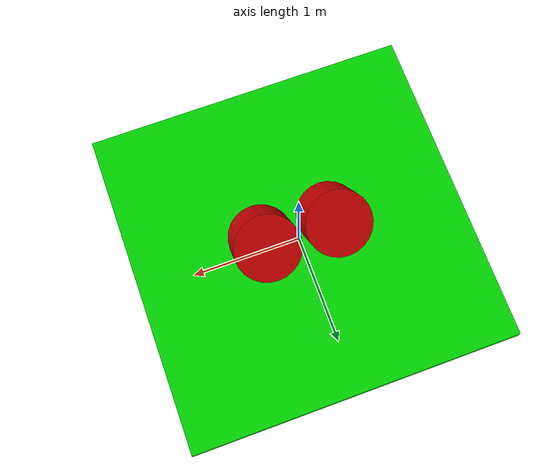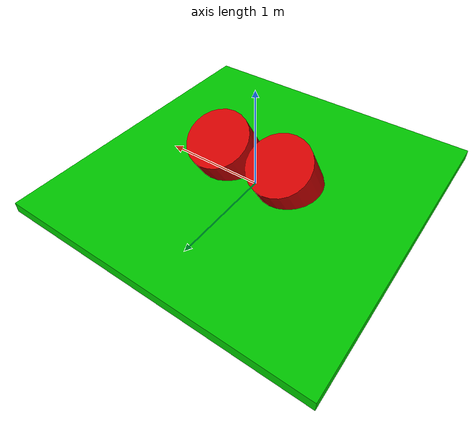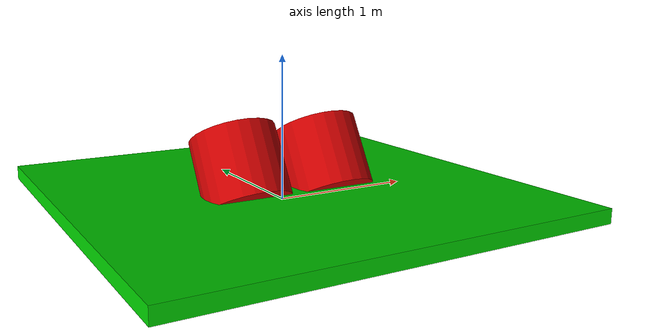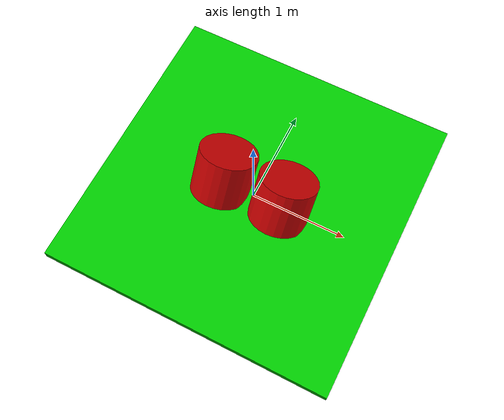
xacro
<?xml version="1.0"?>
<robot xmlns:xacro="http://www.ros.org/wiki/xacro" name="my_custom_robot">
    <xacro:property name="PI" value="3.1416"/>

    <!-- Define material named "black" with RGBA color values -->
    <material name="black">
        <color rgba="0.0 0.0 0.0 1.0" />
    </material>

    <!-- Define material named "blue" with RGBA color values -->
    <material name="blue">
        <color rgba="0.0 0.0 0.8 1.0" />
    </material>

    <!-- Define material named "green" with RGBA color values -->
    <material name="green">
        <color rgba="0.0 0.8 0.0 1.0" />
    </material>

    <!-- Define material named "red" with RGBA color values -->
    <material name="red">
        <color rgba="0.8 0.0 0.0 1.0" />
    </material>

    <!-- Define link named "world" -->
    <link name="world" />

    <!-- Define link named "base" -->
    <link name="base">
        <collision>
            <origin xyz="0 0 0.05" rpy="0 0 0" />
            <geometry>
                <box size="3.0 3.0 0.1" />
            </geometry>
        </collision>
        <visual>
            <origin xyz="0 0 0.05" rpy="0 0 0" />
            <geometry>
                <box size="3.0 3.0 0.1" />
            </geometry>
            <material name="green" />
        </visual>

    </link>

    <!-- Define link named "roller_1" -->
    <link name="roller_1">
        <collision>
            <origin xyz="0 0 0" rpy="0 0 0" />
            <geometry>
                <cylinder radius="0.3" length="0.5" />
            </geometry>
        </collision>
        <visual>
            <origin xyz="0 0 0" rpy="0 0 0" />
            <geometry>
                <cylinder radius="0.3" length="0.5" />
            </geometry>
            <material name="red" />
        </visual>

    </link>

    <!-- Define link named "roller_2" -->
    <link name="roller_2">
        <collision>
            <origin xyz="0 0 0" rpy="0 0 0" />
            <geometry>
                <cylinder radius="0.3" length="0.5" />
            </geometry>
        </collision>
        <visual>
            <origin xyz="0 0 0" rpy="0 0 0" />
            <geometry>
                <cylinder radius="0.3" length="0.5" />
            </geometry>
            <material name="red" />
        </visual>

    </link>

    <!-- Define joint named "joint1" with type "fixed" (the base link is fixed to the world)-->
    <joint name="joint1" type="fixed">
        <parent link="world" />
        <child link="base" />
        <origin xyz="0 0 0" rpy="0 0 0" />
        <axis xyz="0 1 0" />
    </joint>

    <!-- Define joint named "joint2" with type "continuous" -->
    <joint name="joint2" type="continuous">
        <parent link="base" />
        <child link="roller_1" />
        <origin xyz="0.325 0 0.25" rpy="-0.5236 0 0" />
        <axis xyz="0 0 1" />
    </joint>

    <!-- Define joint named "joint3" with type "continuous" -->
    <joint name="joint3" type="continuous">
        <parent link="base" />
        <child link="roller_2" />
        <origin xyz="-0.325 0 0.25" rpy="-0.5236 0 0" />
        <axis xyz="0 0 1" />
    </joint>

    <ros2_control name="custom_controller" type="system">
        <hardware>
            <plugin>my_arduino_controller/MyArduinoInterface</plugin>
            <param name="port">/dev/ttyACM0</param>

        </hardware>

    <joint name="joint2">
        <command_interface name="velocity"/>
        <state_interface name="velocity"/>
        <state_interface name="position"/>
    </joint>

    <joint name="joint3">
        <command_interface name="velocity"/>
        <state_interface name="velocity"/>
        <state_interface name="position"/>
    </joint>

    </ros2_control>

</robot>
